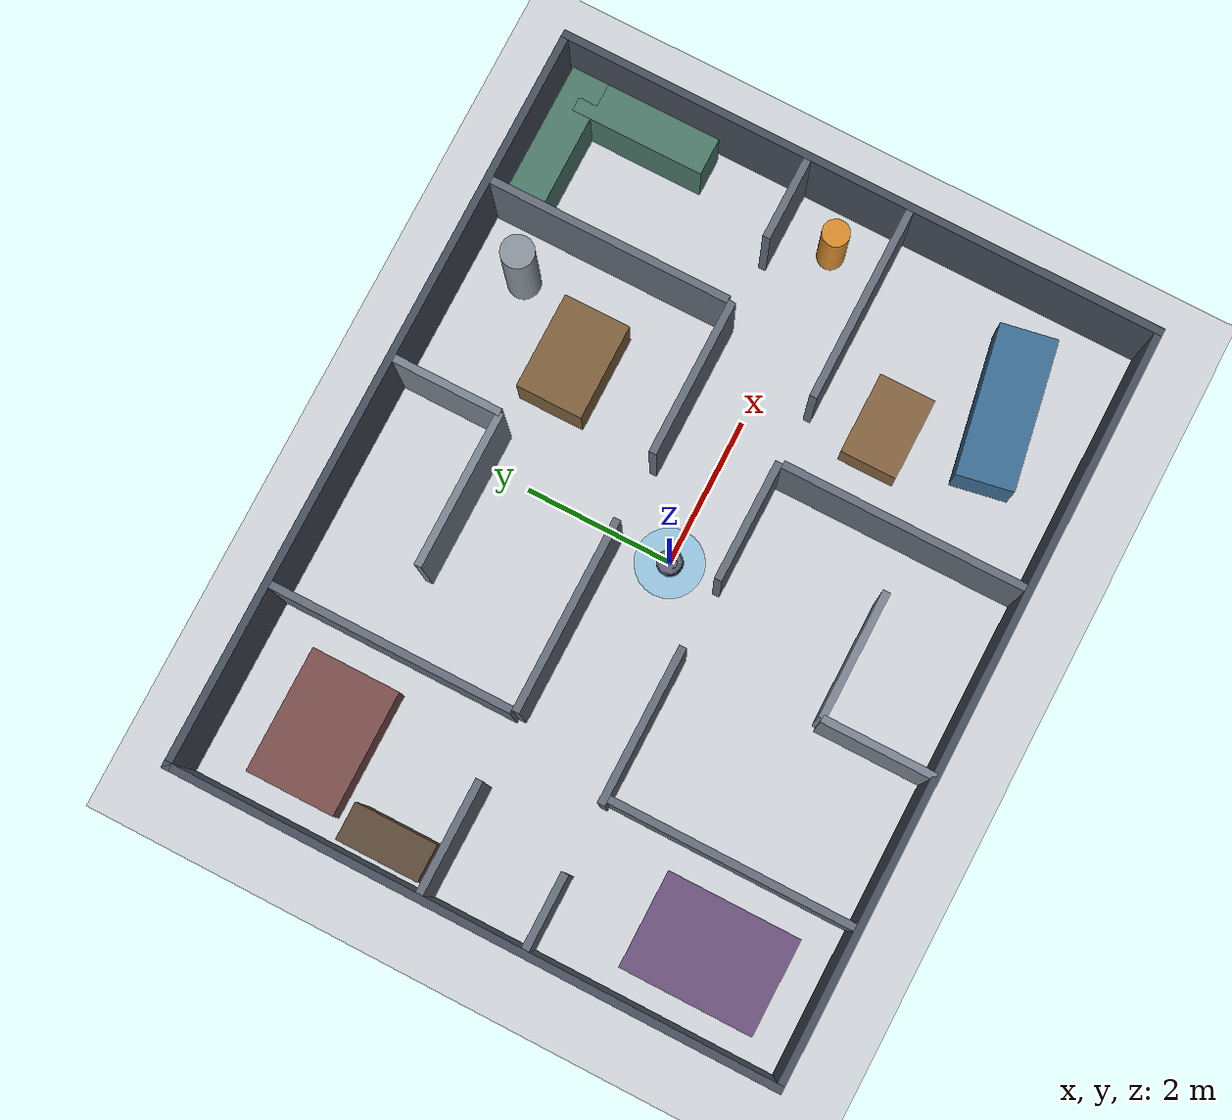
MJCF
<mujoco model="turtlebot4_slam_apartment">

    <compiler angle="radian"/>
    <option gravity="0 0 -9.81" timestep="0.01"/>

    <!--
        The root body in turtlebot4.xml should start at pos="0 0 ...".
        The origin is a central hallway, giving the robot a safe initial pose.
    -->
    <include file="turtlebot4.xml"/>

    <worldbody>

        <light name="ceiling_light" pos="0 0 5" dir="0 0 -1" diffuse="0.8 0.8 0.8"/>

        <!-- 12 m x 10 m floor; apartment interior is 10 m x 8 m. -->
        <geom name="floor" type="plane" size="6 5 0.1"
              rgba="0.82 0.84 0.86 1"
              friction="1.0 0.005 0.0001"/>

        <!-- Robot start marker: visual only. -->
        <geom name="start_marker" type="cylinder"
              pos="0 0 0.006" size="0.45 0.005"
              rgba="0.10 0.65 0.95 0.30"
              contype="0" conaffinity="0"/>

        <!-- Outer walls: apartment interior 10 m x 8 m                  -->
        <!-- Wall thickness 0.10 m, height 1.50 m                        -->

        <geom name="outer_north" type="box" pos="0 4.05 0.75"
              size="5.10 0.05 0.75" rgba="0.28 0.31 0.36 1"/>
        <geom name="outer_south" type="box" pos="0 -4.05 0.75"
              size="5.10 0.05 0.75" rgba="0.28 0.31 0.36 1"/>
        <geom name="outer_east" type="box" pos="5.05 0 0.75"
              size="0.05 4.10 0.75" rgba="0.28 0.31 0.36 1"/>
        <geom name="outer_west" type="box" pos="-5.05 0 0.75"
              size="0.05 4.10 0.75" rgba="0.28 0.31 0.36 1"/>

        <!-- Central hallway boundaries with deliberately staggered doors -->
        <!-- The hallway itself is 1.4 m wide: y = -0.7 .. +0.7          -->

        <!-- North hallway wall: three 0.9 m door openings. -->
        <geom name="hall_n_0" type="box" pos="-4.25 0.70 0.75"
              size="0.75 0.05 0.75" rgba="0.40 0.43 0.48 1"/>
        <geom name="hall_n_1" type="box" pos="-1.30 0.70 0.75"
              size="1.30 0.05 0.75" rgba="0.40 0.43 0.48 1"/>
        <geom name="hall_n_2" type="box" pos="1.95 0.70 0.75"
              size="1.05 0.05 0.75" rgba="0.40 0.43 0.48 1"/>
        <geom name="hall_n_3" type="box" pos="4.45 0.70 0.75"
              size="0.55 0.05 0.75" rgba="0.40 0.43 0.48 1"/>

        <!-- South hallway wall: door positions differ to avoid symmetry. -->
        <geom name="hall_s_0" type="box" pos="-4.50 -0.70 0.75"
              size="0.50 0.05 0.75" rgba="0.40 0.43 0.48 1"/>
        <geom name="hall_s_1" type="box" pos="-2.05 -0.70 0.75"
              size="1.05 0.05 0.75" rgba="0.40 0.43 0.48 1"/>
        <geom name="hall_s_2" type="box" pos="0.70 -0.70 0.75"
              size="0.80 0.05 0.75" rgba="0.40 0.43 0.48 1"/>
        <geom name="hall_s_3" type="box" pos="3.70 -0.70 0.75"
              size="1.30 0.05 0.75" rgba="0.40 0.43 0.48 1"/>

        <!-- North rooms: bedroom, bathroom/study, kitchen               -->

        <geom name="north_partition_w" type="box" pos="-2.60 2.375 0.75"
              size="0.05 1.625 0.75" rgba="0.40 0.43 0.48 1"/>
        <geom name="north_partition_e" type="box" pos="3.00 2.375 0.75"
              size="0.05 1.625 0.75" rgba="0.40 0.43 0.48 1"/>

        <!-- Small asymmetric bathroom inside the north-middle room. -->
        <geom name="bath_wall_h" type="box" pos="-0.55 2.55 0.75"
              size="1.05 0.05 0.75" rgba="0.48 0.52 0.57 1"/>
        <geom name="bath_wall_v" type="box" pos="0.50 3.30 0.75"
              size="0.05 0.75 0.75" rgba="0.48 0.52 0.57 1"/>

        <!-- South rooms: second bedroom, utility room, living room      -->

        <geom name="south_partition_w" type="box" pos="-3.00 -2.375 0.75"
              size="0.05 1.625 0.75" rgba="0.40 0.43 0.48 1"/>
        <geom name="south_partition_e" type="box" pos="1.50 -2.375 0.75"
              size="0.05 1.625 0.75" rgba="0.40 0.43 0.48 1"/>

        <!-- Short L-shaped utility-room wall creates a distinctive corner. -->
        <geom name="utility_wall_h" type="box" pos="-0.15 -2.55 0.75"
              size="0.85 0.05 0.75" rgba="0.48 0.52 0.57 1"/>
        <geom name="utility_wall_v" type="box" pos="-1.00 -3.30 0.75"
              size="0.05 0.75 0.75" rgba="0.48 0.52 0.57 1"/>

        <!-- Static furniture / LiDAR landmarks                          -->
        <!-- All objects are tall enough to intersect the 2D LiDAR plane. -->

        <!-- North-west bedroom -->
        <geom name="bed_nw" type="box" pos="-3.85 2.75 0.30"
              size="0.85 0.60 0.30" rgba="0.48 0.30 0.30 1"/>
        <geom name="wardrobe_nw" type="box" pos="-4.65 1.35 0.65"
              size="0.25 0.55 0.65" rgba="0.36 0.29 0.22 1"/>

        <!-- North-middle dining / study area -->
        <geom name="dining_table" type="box" pos="1.65 2.20 0.38"
              size="0.65 0.45 0.38" rgba="0.50 0.38 0.24 1"/>
        <geom name="column_round" type="cylinder" pos="2.35 3.30 0.75"
              size="0.22 0.75" rgba="0.55 0.58 0.62 1"/>

        <!-- North-east kitchen counters: L-shaped landmark -->
        <geom name="kitchen_counter_n" type="box" pos="4.00 3.65 0.45"
              size="0.90 0.25 0.45" rgba="0.30 0.48 0.42 1"/>
        <geom name="kitchen_counter_e" type="box" pos="4.65 2.75 0.45"
              size="0.25 0.90 0.45" rgba="0.30 0.48 0.42 1"/>

        <!-- South-west bedroom -->
        <geom name="bed_sw" type="box" pos="-4.05 -2.65 0.30"
              size="0.65 0.90 0.30" rgba="0.42 0.32 0.48 1"/>

        <!-- South-east living room: rotated sofa and low table -->
        <geom name="sofa" type="box" pos="3.55 -2.85 0.38"
              size="1.00 0.38 0.38" euler="0 0 0.18"
              rgba="0.24 0.43 0.58 1"/>
        <geom name="coffee_table" type="box" pos="2.70 -1.65 0.28"
              size="0.55 0.38 0.28" rgba="0.52 0.39 0.25 1"/>

        <!-- Hallway landmark prevents a feature-poor long straight scan. -->
        <geom name="hallway_pillar" type="cylinder" pos="4.45 0 0.55"
              size="0.18 0.55" rgba="0.85 0.55 0.18 1"/>

    </worldbody>

</mujoco>

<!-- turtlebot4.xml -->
<mujoco model="turtlebot4">
  <compiler angle="radian" coordinate="local" meshdir="./assets/meshes" autolimits="true"/>
  <size nstack="300000" nuser_geom="1"/>
  <option gravity="0 0 -9.81" timestep="0.002"/>

  <asset>
    <material name="metal" rgba=".9 .95 .95 1"/>
    <material name="black" rgba="0 0 0 1"/>
    <material name="white" rgba="1 1 1 1"/>
    <material name="gray" rgba="0.371705 0.392426 0.474270 1"/>
    <mesh file="body_visual_processed.stl" scale="0.1 0.1 0.1"/>
    <mesh file="bumper_visual.obj" scale="0.001 0.001 0.001"/>
    <mesh file="top_reduced.stl" scale="0.001 0.001 0.001"/>
    <mesh file="weight_block.stl" scale="0.001 0.001 0.001"/>
    <mesh file="wheel.stl" scale="0.001 0.001 0.001"/>
  </asset>

  <worldbody>
    <body name="base" pos="0 0 0.0392">
      <freejoint name="floating_base_joint"/>

      <!-- Robot geoms use group 1. The custom LiDAR ray caster includes
           group 0 only, preventing self-detection without changing collision. -->
      <geom type="mesh" mesh="body_visual_processed" material="gray" mass="0.269" group="1"/>

      <site name="base_frame" pos="0 0 0" quat="1 0 0 0" size="0.003"/>
      <site name="imu" pos="0.051 -0.035 0.0293"
            quat="1 0 0 0" size="0.003"/>

      <body name="bumper" pos="0 0 0" axisangle="0 0 1 4.71239">
        <geom type="mesh" mesh="bumper_visual" material="black" mass="0.1" group="1"/>
      </body>

      <body name="wheel_l" pos="0.11755 0.002 -0.0032">
        <geom type="mesh" mesh="wheel" group="1"/>
        <joint name="left" damping=".03" actuatorfrcrange="-.4 .4"
               pos="0 0 0" axis="1 0 0"/>
      </body>

      <body name="wheel_r" pos="-0.117 0.002 -0.0032">
        <geom type="mesh" mesh="wheel" group="1"/>
        <joint name="right" damping=".03" actuatorfrcrange="-.4 .4"
               pos="0 0 0" axis="1 0 0"/>
      </body>

      <body name="wheel_f" pos="0 -0.125 -0.026">
        <geom type="sphere" size="0.013 0.013" group="1"/>
        <joint type="ball"/>
      </body>

      <!-- Fixed 2D LiDAR frame. A complete 360-degree scan is generated
           by t2DLiDARSensor with mj_multiRay at one simulation timestamp. -->
      <body name="lidar" pos="0 0 0.08">
        <geom name="lidar_head_geom" type="cylinder" size="0.035 0.015"
              rgba="0.1 0.1 0.1 1" mass="0.01" group="1"/>
        <site name="laser_site" pos="0 0 0" quat="1 0 0 0"
              size="0.003" rgba="0 1 0 0.5"/>
      </body>
    </body>
  </worldbody>

  <tendon>
    <fixed name="forward">
      <joint joint="left" coef=".83"/>
      <joint joint="right" coef=".83"/>
    </fixed>
    <fixed name="turn">
      <joint joint="left" coef="-.1"/>
      <joint joint="right" coef=".1"/>
    </fixed>
  </tendon>

  <actuator>
    <motor name="forward" tendon="forward" ctrlrange="-0.5 0.5"/>
    <motor name="turn" tendon="turn" ctrlrange="-2 2"/>
  </actuator>

  <sensor>
    <!-- IMU -->
    <framequat name="imu_quat" objtype="site" objname="imu"/>
    <gyro name="imu_ang" site="imu"/>
    <accelerometer name="imu_acc" site="imu"/>

    <!-- Base pose and velocity for odometry. DSS keeps MuJoCo coordinates;
         dss_ros2_bridge converts them to ROS REP-103. -->
    <framepos name="base_pos" objtype="site" objname="base_frame"/>
    <framequat name="base_quat" objtype="site" objname="base_frame"/>
    <velocimeter name="base_linvel" site="base_frame"/>
    <gyro name="base_angvel" site="base_frame"/>

    <!-- Wheel joint states -->
    <jointpos name="left_pos" joint="left"/>
    <jointvel name="left_vel" joint="left"/>
    <jointpos name="right_pos" joint="right"/>
    <jointvel name="right_vel" joint="right"/>
  </sensor>
</mujoco>
